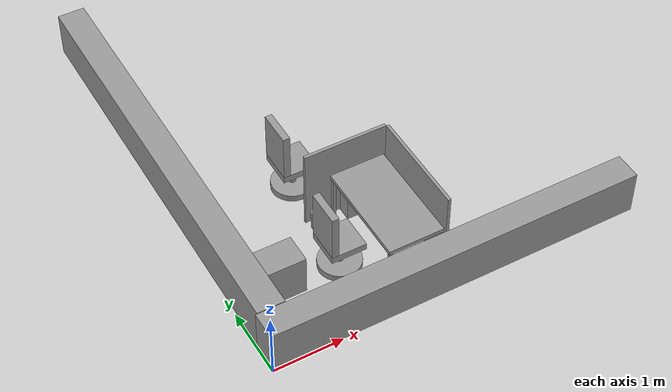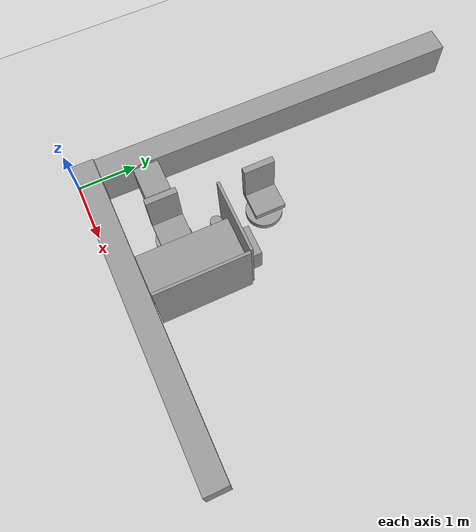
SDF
<sdf version="1.6">
 <world name="default">
  <model name="ground_plane">
   <static>1</static>
   <link name="link">
    <collision name="collision">
     <geometry><plane><normal>0 0 1</normal><size>100 100</size></plane></geometry>
     <surface><friction><ode><mu>100</mu><mu2>50</mu2></ode></friction></surface>
    </collision>
    <visual name="visual">
     <cast_shadows>0</cast_shadows>
     <geometry><plane><normal>0 0 1</normal><size>100 100</size></plane></geometry>
     <material>
      <script><uri>file://media/materials/scripts/gazebo.material</uri><name>Gazebo/Grey</name></script>
     </material>
    </visual>
   </link>
  </model>
  <model name="L8401_mounted_heater">
   <link name="link_1">
    <pose>1.23386 -1.6503 -0.000337 0 -0 0</pose>
    <inertial>
     <mass>1.40657</mass>
     <inertia>
      <ixx>0.0695898</ixx>
      <ixy>0</ixy>
      <ixz>0</ixz>
      <iyy>3.47219</iyy>
      <iyz>0</iyz>
      <izz>3.43877</izz>
     </inertia>
    </inertial>
    <visual name="visual">
     <geometry><box><size>5.40211 0.392756 0.662878</size></box></geometry>
     <material>
      <lighting>1</lighting>
      <script><uri>file://media/materials/scripts/gazebo.material</uri><name>Gazebo/Grey</name></script>
      <ambient>0.3 0.3 0.3 1</ambient>
      <diffuse>0.7 0.7 0.7 1</diffuse>
      <specular>0.01 0.01 0.01 1</specular>
      <emissive>0 0 0 1</emissive>
      <shader type="vertex"><normal_map>__default__</normal_map></shader>
     </material>
    </visual>
    <collision name="collision">
     <geometry><box><size>5.40211 0.392756 0.662878</size></box></geometry>
     <surface>
      <friction>
       <ode><mu>1</mu><mu2>1</mu2><fdir1>0 0 0</fdir1><slip1>0</slip1><slip2>0</slip2></ode>
       <torsional>
        <coefficient>1</coefficient>
        <patch_radius>0</patch_radius>
        <surface_radius>0</surface_radius>
        <use_patch_radius>1</use_patch_radius>
        <ode><slip>0</slip></ode>
       </torsional>
      </friction>
      <bounce><restitution_coefficient>0</restitution_coefficient><threshold>1e+06</threshold></bounce>
      <contact>
       <collide_without_contact>0</collide_without_contact>
       <collide_without_contact_bitmask>1</collide_without_contact_bitmask>
       <collide_bitmask>1</collide_bitmask>
       <ode>
        <soft_cfm>0</soft_cfm>
        <soft_erp>0.2</soft_erp>
        <kp>1e+13</kp>
        <kd>1</kd>
        <max_vel>0.01</max_vel>
        <min_depth>0</min_depth>
       </ode>
       <bullet>
        <split_impulse>1</split_impulse>
        <split_impulse_penetration_threshold>-0.01</split_impulse_penetration_threshold>
        <soft_cfm>0</soft_cfm>
        <soft_erp>0.2</soft_erp>
        <kp>1e+13</kp>
        <kd>1</kd>
       </bullet>
      </contact>
     </surface>
    </collision>
   </link>
   <link name="link_1_clone">
    <pose>-1.23386 1.6503 0.000337 0 0 -1.57467</pose>
    <inertial>
     <mass>1.62191</mass>
     <inertia>
      <ixx>0.0809796</ixx>
      <ixy>0</ixy>
      <ixz>0</ixz>
      <iyy>5.24067</iyy>
      <iyz>0</iyz>
      <izz>5.20139</izz>
     </inertia>
    </inertial>
    <visual name="visual">
     <geometry><box><size>6.19103 0.392756 0.666978</size></box></geometry>
     <material>
      <lighting>1</lighting>
      <script><uri>file://media/materials/scripts/gazebo.material</uri><name>Gazebo/Grey</name></script>
      <ambient>0.3 0.3 0.3 1</ambient>
      <diffuse>0.7 0.7 0.7 1</diffuse>
      <specular>0.01 0.01 0.01 1</specular>
      <emissive>0 0 0 1</emissive>
      <shader type="vertex"><normal_map>__default__</normal_map></shader>
     </material>
    </visual>
    <collision name="collision">
     <geometry><box><size>6.19103 0.392756 0.666978</size></box></geometry>
     <surface>
      <friction>
       <ode><mu>1</mu><mu2>1</mu2><fdir1>0 0 0</fdir1><slip1>0</slip1><slip2>0</slip2></ode>
       <torsional>
        <coefficient>1</coefficient>
        <patch_radius>0</patch_radius>
        <surface_radius>0</surface_radius>
        <use_patch_radius>1</use_patch_radius>
        <ode><slip>0</slip></ode>
       </torsional>
      </friction>
      <bounce><restitution_coefficient>0</restitution_coefficient><threshold>1e+06</threshold></bounce>
      <contact>
       <collide_without_contact>0</collide_without_contact>
       <collide_without_contact_bitmask>1</collide_without_contact_bitmask>
       <collide_bitmask>1</collide_bitmask>
       <ode>
        <soft_cfm>0</soft_cfm>
        <soft_erp>0.2</soft_erp>
        <kp>1e+13</kp>
        <kd>1</kd>
        <max_vel>0.01</max_vel>
        <min_depth>0</min_depth>
       </ode>
       <bullet>
        <split_impulse>1</split_impulse>
        <split_impulse_penetration_threshold>-0.01</split_impulse_penetration_threshold>
        <soft_cfm>0</soft_cfm>
        <soft_erp>0.2</soft_erp>
        <kp>1e+13</kp>
        <kd>1</kd>
       </bullet>
      </contact>
     </surface>
    </collision>
   </link>
   <static>1</static>
   <pose>1.46087 1.8518 0.337569 1e-05 -4.1e-05 -5.2e-05</pose>
  </model>
  <model name="L8401_panel_B_0">
   <link name="link_0">
    <pose>0 0 0 0 -0 1.57</pose>
    <inertial>
     <mass>1</mass>
     <inertia>
      <ixx>0.166667</ixx>
      <ixy>0</ixy>
      <ixz>0</ixz>
      <iyy>0.166667</iyy>
      <iyz>0</iyz>
      <izz>0.166667</izz>
     </inertia>
    </inertial>
    <visual name="visual">
     <geometry><box><size>1.5 0.045 1.23</size></box></geometry>
     <material>
      <lighting>1</lighting>
      <script><uri>file://media/materials/scripts/gazebo.material</uri><name>Gazebo/Grey</name></script>
      <ambient>0.3 0.3 0.3 1</ambient>
      <diffuse>0.7 0.7 0.7 1</diffuse>
      <specular>0.01 0.01 0.01 1</specular>
      <emissive>0 0 0 1</emissive>
      <shader type="vertex"><normal_map>__default__</normal_map></shader>
     </material>
    </visual>
    <collision name="collision">
     <geometry><box><size>1.5 0.045 1.23</size></box></geometry>
     <surface>
      <friction>
       <ode><mu>1</mu><mu2>1</mu2><fdir1>0 0 0</fdir1><slip1>0</slip1><slip2>0</slip2></ode>
       <torsional>
        <coefficient>1</coefficient>
        <patch_radius>0</patch_radius>
        <surface_radius>0</surface_radius>
        <use_patch_radius>1</use_patch_radius>
        <ode><slip>0</slip></ode>
       </torsional>
      </friction>
      <bounce><restitution_coefficient>0</restitution_coefficient><threshold>1e+06</threshold></bounce>
      <contact>
       <collide_without_contact>0</collide_without_contact>
       <collide_without_contact_bitmask>1</collide_without_contact_bitmask>
       <collide_bitmask>1</collide_bitmask>
       <ode>
        <soft_cfm>0</soft_cfm>
        <soft_erp>0.2</soft_erp>
        <kp>1e+13</kp>
        <kd>1</kd>
        <max_vel>0.01</max_vel>
        <min_depth>0</min_depth>
       </ode>
       <bullet>
        <split_impulse>1</split_impulse>
        <split_impulse_penetration_threshold>-0.01</split_impulse_penetration_threshold>
        <soft_cfm>0</soft_cfm>
        <soft_erp>0.2</soft_erp>
        <kp>1e+13</kp>
        <kd>1</kd>
       </bullet>
      </contact>
     </surface>
    </collision>
   </link>
   <static>1</static>
   <pose>2.73777 1.16621 0.615 0 -0 0.00224</pose>
  </model>
  <model name="L8401_desk_clone_0">
   <link name="link_0">
    <pose>0.358907 -0.716347 -0.07 0 -0 3.14159</pose>
    <inertial>
     <mass>0.00540124</mass>
     <inertia>
      <ixx>0.00024509</ixx>
      <ixy>0</ixy>
      <ixz>0</ixz>
      <iyy>0.00024438</iyy>
      <iyz>0</iyz>
      <izz>6.68e-06</izz>
     </inertia>
    </inertial>
    <visual name="visual">
     <geometry><box><size>0.05 0.05 0.7</size></box></geometry>
     <material>
      <lighting>1</lighting>
      <script><uri>file://media/materials/scripts/gazebo.material</uri><name>Gazebo/Grey</name></script>
      <ambient>0.3 0.3 0.3 1</ambient>
      <diffuse>0.7 0.7 0.7 1</diffuse>
      <specular>0.01 0.01 0.01 1</specular>
      <emissive>0 0 0 1</emissive>
      <shader type="vertex"><normal_map>__default__</normal_map></shader>
     </material>
    </visual>
    <collision name="collision">
     <geometry><box><size>0.05 0.05 0.7</size></box></geometry>
     <surface>
      <friction>
       <ode><mu>1</mu><mu2>1</mu2><fdir1>0 0 0</fdir1><slip1>0</slip1><slip2>0</slip2></ode>
       <torsional>
        <coefficient>1</coefficient>
        <patch_radius>0</patch_radius>
        <surface_radius>0</surface_radius>
        <use_patch_radius>1</use_patch_radius>
        <ode><slip>0</slip></ode>
       </torsional>
      </friction>
      <bounce><restitution_coefficient>0</restitution_coefficient><threshold>1e+06</threshold></bounce>
      <contact>
       <collide_without_contact>0</collide_without_contact>
       <collide_without_contact_bitmask>1</collide_without_contact_bitmask>
       <collide_bitmask>1</collide_bitmask>
       <ode>
        <soft_cfm>0</soft_cfm>
        <soft_erp>0.2</soft_erp>
        <kp>1e+13</kp>
        <kd>1</kd>
        <max_vel>0.01</max_vel>
        <min_depth>0</min_depth>
       </ode>
       <bullet>
        <split_impulse>1</split_impulse>
        <split_impulse_penetration_threshold>-0.01</split_impulse_penetration_threshold>
        <soft_cfm>0</soft_cfm>
        <soft_erp>0.2</soft_erp>
        <kp>1e+13</kp>
        <kd>1</kd>
       </bullet>
      </contact>
     </surface>
    </collision>
   </link>
   <link name="link_0_clone">
    <pose>-0.368381 -0.716242 -0.07 0 -0 3.14159</pose>
    <inertial>
     <mass>0.00540124</mass>
     <inertia>
      <ixx>0.00024509</ixx>
      <ixy>0</ixy>
      <ixz>0</ixz>
      <iyy>0.00024438</iyy>
      <iyz>0</iyz>
      <izz>6.68e-06</izz>
     </inertia>
    </inertial>
    <visual name="visual">
     <geometry><box><size>0.05 0.05 0.7</size></box></geometry>
     <material>
      <lighting>1</lighting>
      <script><uri>file://media/materials/scripts/gazebo.material</uri><name>Gazebo/Grey</name></script>
      <ambient>0.3 0.3 0.3 1</ambient>
      <diffuse>0.7 0.7 0.7 1</diffuse>
      <specular>0.01 0.01 0.01 1</specular>
      <emissive>0 0 0 1</emissive>
      <shader type="vertex"><normal_map>__default__</normal_map></shader>
     </material>
    </visual>
    <collision name="collision">
     <geometry><box><size>0.05 0.05 0.7</size></box></geometry>
     <surface>
      <friction>
       <ode><mu>1</mu><mu2>1</mu2><fdir1>0 0 0</fdir1><slip1>0</slip1><slip2>0</slip2></ode>
       <torsional>
        <coefficient>1</coefficient>
        <patch_radius>0</patch_radius>
        <surface_radius>0</surface_radius>
        <use_patch_radius>1</use_patch_radius>
        <ode><slip>0</slip></ode>
       </torsional>
      </friction>
      <bounce><restitution_coefficient>0</restitution_coefficient><threshold>1e+06</threshold></bounce>
      <contact>
       <collide_without_contact>0</collide_without_contact>
       <collide_without_contact_bitmask>1</collide_without_contact_bitmask>
       <collide_bitmask>1</collide_bitmask>
       <ode>
        <soft_cfm>0</soft_cfm>
        <soft_erp>0.2</soft_erp>
        <kp>1e+13</kp>
        <kd>1</kd>
        <max_vel>0.01</max_vel>
        <min_depth>0</min_depth>
       </ode>
       <bullet>
        <split_impulse>1</split_impulse>
        <split_impulse_penetration_threshold>-0.01</split_impulse_penetration_threshold>
        <soft_cfm>0</soft_cfm>
        <soft_erp>0.2</soft_erp>
        <kp>1e+13</kp>
        <kd>1</kd>
       </bullet>
      </contact>
     </surface>
    </collision>
   </link>
   <link name="link_0_clone_0">
    <pose>-0.368174 0.719141 -0.07 0 -0 3.14159</pose>
    <inertial>
     <mass>0.00540124</mass>
     <inertia>
      <ixx>0.00024509</ixx>
      <ixy>0</ixy>
      <ixz>0</ixz>
      <iyy>0.00024438</iyy>
      <iyz>0</iyz>
      <izz>6.68e-06</izz>
     </inertia>
    </inertial>
    <visual name="visual">
     <geometry><box><size>0.05 0.05 0.7</size></box></geometry>
     <material>
      <lighting>1</lighting>
      <script><uri>file://media/materials/scripts/gazebo.material</uri><name>Gazebo/Grey</name></script>
      <ambient>0.3 0.3 0.3 1</ambient>
      <diffuse>0.7 0.7 0.7 1</diffuse>
      <specular>0.01 0.01 0.01 1</specular>
      <emissive>0 0 0 1</emissive>
      <shader type="vertex"><normal_map>__default__</normal_map></shader>
     </material>
    </visual>
    <collision name="collision">
     <geometry><box><size>0.05 0.05 0.7</size></box></geometry>
     <surface>
      <friction>
       <ode><mu>1</mu><mu2>1</mu2><fdir1>0 0 0</fdir1><slip1>0</slip1><slip2>0</slip2></ode>
       <torsional>
        <coefficient>1</coefficient>
        <patch_radius>0</patch_radius>
        <surface_radius>0</surface_radius>
        <use_patch_radius>1</use_patch_radius>
        <ode><slip>0</slip></ode>
       </torsional>
      </friction>
      <bounce><restitution_coefficient>0</restitution_coefficient><threshold>1e+06</threshold></bounce>
      <contact>
       <collide_without_contact>0</collide_without_contact>
       <collide_without_contact_bitmask>1</collide_without_contact_bitmask>
       <collide_bitmask>1</collide_bitmask>
       <ode>
        <soft_cfm>0</soft_cfm>
        <soft_erp>0.2</soft_erp>
        <kp>1e+13</kp>
        <kd>1</kd>
        <max_vel>0.01</max_vel>
        <min_depth>0</min_depth>
       </ode>
       <bullet>
        <split_impulse>1</split_impulse>
        <split_impulse_penetration_threshold>-0.01</split_impulse_penetration_threshold>
        <soft_cfm>0</soft_cfm>
        <soft_erp>0.2</soft_erp>
        <kp>1e+13</kp>
        <kd>1</kd>
       </bullet>
      </contact>
     </surface>
    </collision>
   </link>
   <link name="link_0_clone_1">
    <pose>0.359113 0.719037 -0.07 0 -0 3.14159</pose>
    <inertial>
     <mass>0.00540124</mass>
     <inertia>
      <ixx>0.00024509</ixx>
      <ixy>0</ixy>
      <ixz>0</ixz>
      <iyy>0.00024438</iyy>
      <iyz>0</iyz>
      <izz>6.68e-06</izz>
     </inertia>
    </inertial>
    <visual name="visual">
     <geometry><box><size>0.05 0.05 0.7</size></box></geometry>
     <material>
      <lighting>1</lighting>
      <script><uri>file://media/materials/scripts/gazebo.material</uri><name>Gazebo/Grey</name></script>
      <ambient>0.3 0.3 0.3 1</ambient>
      <diffuse>0.7 0.7 0.7 1</diffuse>
      <specular>0.01 0.01 0.01 1</specular>
      <emissive>0 0 0 1</emissive>
      <shader type="vertex"><normal_map>__default__</normal_map></shader>
     </material>
    </visual>
    <collision name="collision">
     <geometry><box><size>0.05 0.05 0.7</size></box></geometry>
     <surface>
      <friction>
       <ode><mu>1</mu><mu2>1</mu2><fdir1>0 0 0</fdir1><slip1>0</slip1><slip2>0</slip2></ode>
       <torsional>
        <coefficient>1</coefficient>
        <patch_radius>0</patch_radius>
        <surface_radius>0</surface_radius>
        <use_patch_radius>1</use_patch_radius>
        <ode><slip>0</slip></ode>
       </torsional>
      </friction>
      <bounce><restitution_coefficient>0</restitution_coefficient><threshold>1e+06</threshold></bounce>
      <contact>
       <collide_without_contact>0</collide_without_contact>
       <collide_without_contact_bitmask>1</collide_without_contact_bitmask>
       <collide_bitmask>1</collide_bitmask>
       <ode>
        <soft_cfm>0</soft_cfm>
        <soft_erp>0.2</soft_erp>
        <kp>1e+13</kp>
        <kd>1</kd>
        <max_vel>0.01</max_vel>
        <min_depth>0</min_depth>
       </ode>
       <bullet>
        <split_impulse>1</split_impulse>
        <split_impulse_penetration_threshold>-0.01</split_impulse_penetration_threshold>
        <soft_cfm>0</soft_cfm>
        <soft_erp>0.2</soft_erp>
        <kp>1e+13</kp>
        <kd>1</kd>
       </bullet>
      </contact>
     </surface>
    </collision>
   </link>
   <link name="link_1">
    <pose>-6e-05 0.001672 0.28 0 -0 0</pose>
    <inertial>
     <mass>0.0467165</mass>
     <inertia>
      <ixx>0.00864379</ixx>
      <ixy>0</ixy>
      <ixz>0</ixz>
      <iyy>0.00285842</iyy>
      <iyz>0</iyz>
      <izz>0.0114918</izz>
     </inertia>
    </inertial>
    <visual name="visual">
     <geometry><box><size>0.8 1.5 0.06</size></box></geometry>
     <material>
      <lighting>1</lighting>
      <script><uri>file://media/materials/scripts/gazebo.material</uri><name>Gazebo/Grey</name></script>
      <ambient>0.3 0.3 0.3 1</ambient>
      <diffuse>0.7 0.7 0.7 1</diffuse>
      <specular>0.01 0.01 0.01 1</specular>
      <emissive>0 0 0 1</emissive>
      <shader type="vertex"><normal_map>__default__</normal_map></shader>
     </material>
    </visual>
    <collision name="collision">
     <geometry><box><size>0.8 1.5 0.06</size></box></geometry>
     <surface>
      <friction>
       <ode><mu>1</mu><mu2>1</mu2><fdir1>0 0 0</fdir1><slip1>0</slip1><slip2>0</slip2></ode>
       <torsional>
        <coefficient>1</coefficient>
        <patch_radius>0</patch_radius>
        <surface_radius>0</surface_radius>
        <use_patch_radius>1</use_patch_radius>
        <ode><slip>0</slip></ode>
       </torsional>
      </friction>
      <bounce><restitution_coefficient>0</restitution_coefficient><threshold>1e+06</threshold></bounce>
      <contact>
       <collide_without_contact>0</collide_without_contact>
       <collide_without_contact_bitmask>1</collide_without_contact_bitmask>
       <collide_bitmask>1</collide_bitmask>
       <ode>
        <soft_cfm>0</soft_cfm>
        <soft_erp>0.2</soft_erp>
        <kp>1e+13</kp>
        <kd>1</kd>
        <max_vel>0.01</max_vel>
        <min_depth>0</min_depth>
       </ode>
       <bullet>
        <split_impulse>1</split_impulse>
        <split_impulse_penetration_threshold>-0.01</split_impulse_penetration_threshold>
        <soft_cfm>0</soft_cfm>
        <soft_erp>0.2</soft_erp>
        <kp>1e+13</kp>
        <kd>1</kd>
       </bullet>
      </contact>
     </surface>
    </collision>
   </link>
   <joint name="link_1_JOINT_0" type="fixed">
    <parent>link_1</parent>
    <child>link_0</child>
    <pose>0 0 0 -0.01 -0.02 -0.01</pose>
    <physics>
     <ode><limit><cfm>0</cfm><erp>0.2</erp></limit><suspension><cfm>0</cfm><erp>0.2</erp></suspension></ode>
    </physics>
   </joint>
   <joint name="link_1_JOINT_1" type="fixed">
    <parent>link_1</parent>
    <child>link_0_clone</child>
    <physics>
     <ode><limit><cfm>0</cfm><erp>0.2</erp></limit><suspension><cfm>0</cfm><erp>0.2</erp></suspension></ode>
    </physics>
   </joint>
   <joint name="link_1_JOINT_2" type="fixed">
    <parent>link_1</parent>
    <child>link_0_clone_1</child>
    <physics>
     <ode><limit><cfm>0</cfm><erp>0.2</erp></limit><suspension><cfm>0</cfm><erp>0.2</erp></suspension></ode>
    </physics>
   </joint>
   <joint name="link_1_JOINT_3" type="fixed">
    <parent>link_1</parent>
    <child>link_0_clone_0</child>
    <physics>
     <ode><limit><cfm>0</cfm><erp>0.2</erp></limit><suspension><cfm>0</cfm><erp>0.2</erp></suspension></ode>
    </physics>
   </joint>
   <static>1</static>
   <pose>2.28207 1.15713 0.420003 3e-06 2e-06 0.000315</pose>
  </model>
  <model name="L8401_panel_A_0_clone">
   <link name="link_0">
    <inertial>
     <mass>1</mass>
     <inertia>
      <ixx>0.166667</ixx>
      <ixy>0</ixy>
      <ixz>0</ixz>
      <iyy>0.166667</iyy>
      <iyz>0</iyz>
      <izz>0.166667</izz>
     </inertia>
    </inertial>
    <visual name="visual">
     <geometry><box><size>1.2 0.045 1.23</size></box></geometry>
     <material>
      <lighting>1</lighting>
      <script><uri>file://media/materials/scripts/gazebo.material</uri><name>Gazebo/Grey</name></script>
      <ambient>0.3 0.3 0.3 1</ambient>
      <diffuse>0.7 0.7 0.7 1</diffuse>
      <specular>0.01 0.01 0.01 1</specular>
      <emissive>0 0 0 1</emissive>
      <shader type="vertex"><normal_map>__default__</normal_map></shader>
     </material>
    </visual>
    <collision name="collision">
     <geometry><box><size>1.2 0.045 1.23</size></box></geometry>
     <surface>
      <friction>
       <ode><mu>1</mu><mu2>1</mu2><fdir1>0 0 0</fdir1><slip1>0</slip1><slip2>0</slip2></ode>
       <torsional>
        <coefficient>1</coefficient>
        <patch_radius>0</patch_radius>
        <surface_radius>0</surface_radius>
        <use_patch_radius>1</use_patch_radius>
        <ode><slip>0</slip></ode>
       </torsional>
      </friction>
      <bounce><restitution_coefficient>0</restitution_coefficient><threshold>1e+06</threshold></bounce>
      <contact>
       <collide_without_contact>0</collide_without_contact>
       <collide_without_contact_bitmask>1</collide_without_contact_bitmask>
       <collide_bitmask>1</collide_bitmask>
       <ode>
        <soft_cfm>0</soft_cfm>
        <soft_erp>0.2</soft_erp>
        <kp>1e+13</kp>
        <kd>1</kd>
        <max_vel>0.01</max_vel>
        <min_depth>0</min_depth>
       </ode>
       <bullet>
        <split_impulse>1</split_impulse>
        <split_impulse_penetration_threshold>-0.01</split_impulse_penetration_threshold>
        <soft_cfm>0</soft_cfm>
        <soft_erp>0.2</soft_erp>
        <kp>1e+13</kp>
        <kd>1</kd>
       </bullet>
      </contact>
     </surface>
    </collision>
   </link>
   <static>1</static>
   <pose>2.11523 1.94144 0.615002 5e-06 -3e-06 2e-06</pose>
  </model>
  <model name="L8401_computer_clone_0">
   <link name="link">
    <inertial>
     <mass>1</mass>
     <inertia>
      <ixx>0.166667</ixx>
      <ixy>0</ixy>
      <ixz>0</ixz>
      <iyy>0.166667</iyy>
      <iyz>0</iyz>
      <izz>0.166667</izz>
     </inertia>
    </inertial>
    <visual name="visual">
     <geometry><box><size>0.5 0.2 0.5</size></box></geometry>
     <material>
      <script><name>Gazebo/Grey</name><uri>file://media/materials/scripts/gazebo.material</uri></script>
      <ambient>0.3 0.3 0.3 1</ambient>
      <diffuse>0.7 0.7 0.7 1</diffuse>
      <specular>0.01 0.01 0.01 1</specular>
      <emissive>0 0 0 1</emissive>
      <shader type="vertex"><normal_map>__default__</normal_map></shader>
     </material>
    </visual>
    <collision name="collision">
     <geometry><box><size>0.5 0.2 0.5</size></box></geometry>
     <surface>
      <friction>
       <ode><mu>1</mu><mu2>1</mu2><fdir1>0 0 0</fdir1><slip1>0</slip1><slip2>0</slip2></ode>
       <torsional>
        <coefficient>1</coefficient>
        <patch_radius>0</patch_radius>
        <surface_radius>0</surface_radius>
        <use_patch_radius>1</use_patch_radius>
        <ode><slip>0</slip></ode>
       </torsional>
      </friction>
      <bounce><restitution_coefficient>0</restitution_coefficient><threshold>1e+06</threshold></bounce>
      <contact>
       <collide_without_contact>0</collide_without_contact>
       <collide_without_contact_bitmask>1</collide_without_contact_bitmask>
       <collide_bitmask>1</collide_bitmask>
       <ode>
        <soft_cfm>0</soft_cfm>
        <soft_erp>0.2</soft_erp>
        <kp>1e+13</kp>
        <kd>1</kd>
        <max_vel>0.01</max_vel>
        <min_depth>0</min_depth>
       </ode>
       <bullet>
        <split_impulse>1</split_impulse>
        <split_impulse_penetration_threshold>-0.01</split_impulse_penetration_threshold>
        <soft_cfm>0</soft_cfm>
        <soft_erp>0.2</soft_erp>
        <kp>1e+13</kp>
        <kd>1</kd>
       </bullet>
      </contact>
     </surface>
    </collision>
   </link>
   <static>1</static>
   <pose>2.28162 1.80792 0.250001 -0 2e-06 -0.000163</pose>
  </model>
  <model name="L8401_computer_clone_1">
   <link name="link">
    <inertial>
     <mass>1</mass>
     <inertia>
      <ixx>0.166667</ixx>
      <ixy>0</ixy>
      <ixz>0</ixz>
      <iyy>0.166667</iyy>
      <iyz>0</iyz>
      <izz>0.166667</izz>
     </inertia>
    </inertial>
    <visual name="visual">
     <geometry><box><size>0.5 0.2 0.5</size></box></geometry>
     <material>
      <script><name>Gazebo/Grey</name><uri>file://media/materials/scripts/gazebo.material</uri></script>
      <ambient>0.3 0.3 0.3 1</ambient>
      <diffuse>0.7 0.7 0.7 1</diffuse>
      <specular>0.01 0.01 0.01 1</specular>
      <emissive>0 0 0 1</emissive>
      <shader type="vertex"><normal_map>__default__</normal_map></shader>
     </material>
    </visual>
    <collision name="collision">
     <geometry><box><size>0.5 0.2 0.5</size></box></geometry>
     <surface>
      <friction>
       <ode><mu>1</mu><mu2>1</mu2><fdir1>0 0 0</fdir1><slip1>0</slip1><slip2>0</slip2></ode>
       <torsional>
        <coefficient>1</coefficient>
        <patch_radius>0</patch_radius>
        <surface_radius>0</surface_radius>
        <use_patch_radius>1</use_patch_radius>
        <ode><slip>0</slip></ode>
       </torsional>
      </friction>
      <bounce><restitution_coefficient>0</restitution_coefficient><threshold>1e+06</threshold></bounce>
      <contact>
       <collide_without_contact>0</collide_without_contact>
       <collide_without_contact_bitmask>1</collide_without_contact_bitmask>
       <collide_bitmask>1</collide_bitmask>
       <ode>
        <soft_cfm>0</soft_cfm>
        <soft_erp>0.2</soft_erp>
        <kp>1e+13</kp>
        <kd>1</kd>
        <max_vel>0.01</max_vel>
        <min_depth>0</min_depth>
       </ode>
       <bullet>
        <split_impulse>1</split_impulse>
        <split_impulse_penetration_threshold>-0.01</split_impulse_penetration_threshold>
        <soft_cfm>0</soft_cfm>
        <soft_erp>0.2</soft_erp>
        <kp>1e+13</kp>
        <kd>1</kd>
       </bullet>
      </contact>
     </surface>
    </collision>
   </link>
   <static>1</static>
   <pose>2.28161 2.08176 0.250001 1e-06 -2e-06 -0.000225</pose>
  </model>
  <model name="L8401_drawer_A">
   <link name="link">
    <inertial>
     <mass>1</mass>
     <inertia>
      <ixx>0.166667</ixx>
      <ixy>0</ixy>
      <ixz>0</ixz>
      <iyy>0.166667</iyy>
      <iyz>0</iyz>
      <izz>0.166667</izz>
     </inertia>
    </inertial>
    <visual name="visual">
     <geometry><box><size>0.56 0.42 0.61</size></box></geometry>
     <material>
      <script><name>Gazebo/Grey</name><uri>file://media/materials/scripts/gazebo.material</uri></script>
      <ambient>0.3 0.3 0.3 1</ambient>
      <diffuse>0.7 0.7 0.7 1</diffuse>
      <specular>0.01 0.01 0.01 1</specular>
      <emissive>0 0 0 1</emissive>
      <shader type="vertex"><normal_map>__default__</normal_map></shader>
     </material>
    </visual>
    <collision name="collision">
     <geometry><box><size>0.56 0.42 0.61</size></box></geometry>
     <surface>
      <friction>
       <ode><mu>1</mu><mu2>1</mu2><fdir1>0 0 0</fdir1><slip1>0</slip1><slip2>0</slip2></ode>
       <torsional>
        <coefficient>1</coefficient>
        <patch_radius>0</patch_radius>
        <surface_radius>0</surface_radius>
        <use_patch_radius>1</use_patch_radius>
        <ode><slip>0</slip></ode>
       </torsional>
      </friction>
      <bounce><restitution_coefficient>0</restitution_coefficient><threshold>1e+06</threshold></bounce>
      <contact>
       <collide_without_contact>0</collide_without_contact>
       <collide_without_contact_bitmask>1</collide_without_contact_bitmask>
       <collide_bitmask>1</collide_bitmask>
       <ode>
        <soft_cfm>0</soft_cfm>
        <soft_erp>0.2</soft_erp>
        <kp>1e+13</kp>
        <kd>1</kd>
        <max_vel>0.01</max_vel>
        <min_depth>0</min_depth>
       </ode>
       <bullet>
        <split_impulse>1</split_impulse>
        <split_impulse_penetration_threshold>-0.01</split_impulse_penetration_threshold>
        <soft_cfm>0</soft_cfm>
        <soft_erp>0.2</soft_erp>
        <kp>1e+13</kp>
        <kd>1</kd>
       </bullet>
      </contact>
     </surface>
    </collision>
   </link>
   <static>1</static>
   <pose>0.69612 1.11916 0.305 0 -0 0</pose>
  </model>
  <model name="L8401_trash_bin_clone">
   <link name="link">
    <inertial>
     <mass>1</mass>
     <inertia><ixx>0.145833</ixx><ixy>0</ixy><ixz>0</ixz><iyy>0.145833</iyy><iyz>0</iyz><izz>0.125</izz></inertia>
    </inertial>
    <visual name="visual">
     <geometry><cylinder><radius>0.1</radius><length>0.26</length></cylinder></geometry>
     <material>
      <script><name>Gazebo/Grey</name><uri>file://media/materials/scripts/gazebo.material</uri></script>
      <ambient>0.3 0.3 0.3 1</ambient>
      <diffuse>0.7 0.7 0.7 1</diffuse>
      <specular>0.01 0.01 0.01 1</specular>
      <emissive>0 0 0 1</emissive>
      <shader type="vertex"><normal_map>__default__</normal_map></shader>
     </material>
    </visual>
    <collision name="collision">
     <geometry><cylinder><radius>0.1</radius><length>0.26</length></cylinder></geometry>
     <surface>
      <friction>
       <ode><mu>1</mu><mu2>1</mu2><fdir1>0 0 0</fdir1><slip1>0</slip1><slip2>0</slip2></ode>
       <torsional>
        <coefficient>1</coefficient>
        <patch_radius>0</patch_radius>
        <surface_radius>0</surface_radius>
        <use_patch_radius>1</use_patch_radius>
        <ode><slip>0</slip></ode>
       </torsional>
      </friction>
      <bounce><restitution_coefficient>0</restitution_coefficient><threshold>1e+06</threshold></bounce>
      <contact>
       <collide_without_contact>0</collide_without_contact>
       <collide_without_contact_bitmask>1</collide_without_contact_bitmask>
       <collide_bitmask>1</collide_bitmask>
       <ode>
        <soft_cfm>0</soft_cfm>
        <soft_erp>0.2</soft_erp>
        <kp>1e+13</kp>
        <kd>1</kd>
        <max_vel>0.01</max_vel>
        <min_depth>0</min_depth>
       </ode>
       <bullet>
        <split_impulse>1</split_impulse>
        <split_impulse_penetration_threshold>-0.01</split_impulse_penetration_threshold>
        <soft_cfm>0</soft_cfm>
        <soft_erp>0.2</soft_erp>
        <kp>1e+13</kp>
        <kd>1</kd>
       </bullet>
      </contact>
     </surface>
    </collision>
   </link>
   <static>1</static>
   <pose>1.63915 1.79565 0.129999 0 -0 0</pose>
  </model>
  <model name="L8401_chair">
   <link name="link">
    <pose>0 -0 0.25 0 -0 0</pose>
    <inertial>
     <mass>1</mass>
     <inertia><ixx>0.145833</ixx><ixy>0</ixy><ixz>0</ixz><iyy>0.145833</iyy><iyz>0</iyz><izz>0.125</izz></inertia>
    </inertial>
    <visual name="visual">
     <geometry><cylinder><radius>0.05</radius><length>0.3</length></cylinder></geometry>
     <material>
      <script><name>Gazebo/Grey</name><uri>file://media/materials/scripts/gazebo.material</uri></script>
      <ambient>0.3 0.3 0.3 1</ambient>
      <diffuse>0.7 0.7 0.7 1</diffuse>
      <specular>0.01 0.01 0.01 1</specular>
      <emissive>0 0 0 1</emissive>
      <shader type="vertex"><normal_map>__default__</normal_map></shader>
     </material>
    </visual>
    <collision name="collision">
     <geometry><cylinder><radius>0.05</radius><length>0.3</length></cylinder></geometry>
     <surface>
      <friction>
       <ode><mu>1</mu><mu2>1</mu2><fdir1>0 0 0</fdir1><slip1>0</slip1><slip2>0</slip2></ode>
       <torsional>
        <coefficient>1</coefficient>
        <patch_radius>0</patch_radius>
        <surface_radius>0</surface_radius>
        <use_patch_radius>1</use_patch_radius>
        <ode><slip>0</slip></ode>
       </torsional>
      </friction>
      <bounce><restitution_coefficient>0</restitution_coefficient><threshold>1e+06</threshold></bounce>
      <contact>
       <collide_without_contact>0</collide_without_contact>
       <collide_without_contact_bitmask>1</collide_without_contact_bitmask>
       <collide_bitmask>1</collide_bitmask>
       <ode>
        <soft_cfm>0</soft_cfm>
        <soft_erp>0.2</soft_erp>
        <kp>1e+13</kp>
        <kd>1</kd>
        <max_vel>0.01</max_vel>
        <min_depth>0</min_depth>
       </ode>
       <bullet>
        <split_impulse>1</split_impulse>
        <split_impulse_penetration_threshold>-0.01</split_impulse_penetration_threshold>
        <soft_cfm>0</soft_cfm>
        <soft_erp>0.2</soft_erp>
        <kp>1e+13</kp>
        <kd>1</kd>
       </bullet>
      </contact>
     </surface>
    </collision>
   </link>
   <link name="link_0">
    <pose>0 -0 0.45 0 -0 0</pose>
    <inertial>
     <mass>1</mass>
     <inertia>
      <ixx>0.166667</ixx>
      <ixy>0</ixy>
      <ixz>0</ixz>
      <iyy>0.166667</iyy>
      <iyz>0</iyz>
      <izz>0.166667</izz>
     </inertia>
    </inertial>
    <visual name="visual">
     <geometry><box><size>0.5 0.5 0.1</size></box></geometry>
     <material>
      <lighting>1</lighting>
      <script><uri>file://media/materials/scripts/gazebo.material</uri><name>Gazebo/Grey</name></script>
      <ambient>0.3 0.3 0.3 1</ambient>
      <diffuse>0.7 0.7 0.7 1</diffuse>
      <specular>0.01 0.01 0.01 1</specular>
      <emissive>0 0 0 1</emissive>
      <shader type="vertex"><normal_map>__default__</normal_map></shader>
     </material>
    </visual>
    <collision name="collision">
     <geometry><box><size>0.5 0.5 0.1</size></box></geometry>
     <surface>
      <friction>
       <ode><mu>1</mu><mu2>1</mu2><fdir1>0 0 0</fdir1><slip1>0</slip1><slip2>0</slip2></ode>
       <torsional>
        <coefficient>1</coefficient>
        <patch_radius>0</patch_radius>
        <surface_radius>0</surface_radius>
        <use_patch_radius>1</use_patch_radius>
        <ode><slip>0</slip></ode>
       </torsional>
      </friction>
      <bounce><restitution_coefficient>0</restitution_coefficient><threshold>1e+06</threshold></bounce>
      <contact>
       <collide_without_contact>0</collide_without_contact>
       <collide_without_contact_bitmask>1</collide_without_contact_bitmask>
       <collide_bitmask>1</collide_bitmask>
       <ode>
        <soft_cfm>0</soft_cfm>
        <soft_erp>0.2</soft_erp>
        <kp>1e+13</kp>
        <kd>1</kd>
        <max_vel>0.01</max_vel>
        <min_depth>0</min_depth>
       </ode>
       <bullet>
        <split_impulse>1</split_impulse>
        <split_impulse_penetration_threshold>-0.01</split_impulse_penetration_threshold>
        <soft_cfm>0</soft_cfm>
        <soft_erp>0.2</soft_erp>
        <kp>1e+13</kp>
        <kd>1</kd>
       </bullet>
      </contact>
     </surface>
    </collision>
   </link>
   <link name="link_1">
    <pose>0 -0 0.05 0 -0 0</pose>
    <inertial>
     <mass>1</mass>
     <inertia><ixx>0.145833</ixx><ixy>0</ixy><ixz>0</ixz><iyy>0.145833</iyy><iyz>0</iyz><izz>0.125</izz></inertia>
    </inertial>
    <visual name="visual">
     <geometry><cylinder><radius>0.3</radius><length>0.1</length></cylinder></geometry>
     <material>
      <lighting>1</lighting>
      <script><uri>file://media/materials/scripts/gazebo.material</uri><name>Gazebo/Grey</name></script>
      <ambient>0.3 0.3 0.3 1</ambient>
      <diffuse>0.7 0.7 0.7 1</diffuse>
      <specular>0.01 0.01 0.01 1</specular>
      <emissive>0 0 0 1</emissive>
      <shader type="vertex"><normal_map>__default__</normal_map></shader>
     </material>
    </visual>
    <collision name="collision">
     <geometry><cylinder><radius>0.3</radius><length>0.1</length></cylinder></geometry>
     <surface>
      <friction>
       <ode><mu>1</mu><mu2>1</mu2><fdir1>0 0 0</fdir1><slip1>0</slip1><slip2>0</slip2></ode>
       <torsional>
        <coefficient>1</coefficient>
        <patch_radius>0</patch_radius>
        <surface_radius>0</surface_radius>
        <use_patch_radius>1</use_patch_radius>
        <ode><slip>0</slip></ode>
       </torsional>
      </friction>
      <bounce><restitution_coefficient>0</restitution_coefficient><threshold>1e+06</threshold></bounce>
      <contact>
       <collide_without_contact>0</collide_without_contact>
       <collide_without_contact_bitmask>1</collide_without_contact_bitmask>
       <collide_bitmask>1</collide_bitmask>
       <ode>
        <soft_cfm>0</soft_cfm>
        <soft_erp>0.2</soft_erp>
        <kp>1e+13</kp>
        <kd>1</kd>
        <max_vel>0.01</max_vel>
        <min_depth>0</min_depth>
       </ode>
       <bullet>
        <split_impulse>1</split_impulse>
        <split_impulse_penetration_threshold>-0.01</split_impulse_penetration_threshold>
        <soft_cfm>0</soft_cfm>
        <soft_erp>0.2</soft_erp>
        <kp>1e+13</kp>
        <kd>1</kd>
       </bullet>
      </contact>
     </surface>
    </collision>
   </link>
   <link name="link_2">
    <pose>-0.2 0 0.85 0 -0 0</pose>
    <inertial>
     <mass>1</mass>
     <inertia>
      <ixx>0.166667</ixx>
      <ixy>0</ixy>
      <ixz>0</ixz>
      <iyy>0.166667</iyy>
      <iyz>0</iyz>
      <izz>0.166667</izz>
     </inertia>
    </inertial>
    <visual name="visual">
     <geometry><box><size>0.1 0.5 0.7</size></box></geometry>
     <material>
      <lighting>1</lighting>
      <script><uri>file://media/materials/scripts/gazebo.material</uri><name>Gazebo/Grey</name></script>
      <ambient>0.3 0.3 0.3 1</ambient>
      <diffuse>0.7 0.7 0.7 1</diffuse>
      <specular>0.01 0.01 0.01 1</specular>
      <emissive>0 0 0 1</emissive>
      <shader type="vertex"><normal_map>__default__</normal_map></shader>
     </material>
    </visual>
    <collision name="collision">
     <geometry><box><size>0.1 0.5 0.7</size></box></geometry>
     <surface>
      <friction>
       <ode><mu>1</mu><mu2>1</mu2><fdir1>0 0 0</fdir1><slip1>0</slip1><slip2>0</slip2></ode>
       <torsional>
        <coefficient>1</coefficient>
        <patch_radius>0</patch_radius>
        <surface_radius>0</surface_radius>
        <use_patch_radius>1</use_patch_radius>
        <ode><slip>0</slip></ode>
       </torsional>
      </friction>
      <bounce><restitution_coefficient>0</restitution_coefficient><threshold>1e+06</threshold></bounce>
      <contact>
       <collide_without_contact>0</collide_without_contact>
       <collide_without_contact_bitmask>1</collide_without_contact_bitmask>
       <collide_bitmask>1</collide_bitmask>
       <ode>
        <soft_cfm>0</soft_cfm>
        <soft_erp>0.2</soft_erp>
        <kp>1e+13</kp>
        <kd>1</kd>
        <max_vel>0.01</max_vel>
        <min_depth>0</min_depth>
       </ode>
       <bullet>
        <split_impulse>1</split_impulse>
        <split_impulse_penetration_threshold>-0.01</split_impulse_penetration_threshold>
        <soft_cfm>0</soft_cfm>
        <soft_erp>0.2</soft_erp>
        <kp>1e+13</kp>
        <kd>1</kd>
       </bullet>
      </contact>
     </surface>
    </collision>
   </link>
   <joint name="link_0_JOINT_2" type="fixed">
    <parent>link_0</parent>
    <child>link_2</child>
    <physics>
     <ode><limit><cfm>0</cfm><erp>0.2</erp></limit><suspension><cfm>0</cfm><erp>0.2</erp></suspension></ode>
    </physics>
   </joint>
   <joint name="link_1_JOINT_0" type="fixed">
    <parent>link_1</parent>
    <child>link</child>
    <physics>
     <ode><limit><cfm>0</cfm><erp>0.2</erp></limit><suspension><cfm>0</cfm><erp>0.2</erp></suspension></ode>
    </physics>
   </joint>
   <joint name="link_JOINT_1" type="fixed">
    <parent>link</parent>
    <child>link_0</child>
    <physics>
     <ode><limit><cfm>0</cfm><erp>0.2</erp></limit><suspension><cfm>0</cfm><erp>0.2</erp></suspension></ode>
    </physics>
   </joint>
   <static>1</static>
   <pose>1.55767 1.08991 -3e-06 0 0 -3.7e-05</pose>
  </model>
  <model name="L8401_chair_clone">
   <link name="link">
    <pose>0 -0 0.25 0 -0 0</pose>
    <inertial>
     <mass>1</mass>
     <inertia><ixx>0.145833</ixx><ixy>0</ixy><ixz>0</ixz><iyy>0.145833</iyy><iyz>0</iyz><izz>0.125</izz></inertia>
    </inertial>
    <visual name="visual">
     <geometry><cylinder><radius>0.05</radius><length>0.3</length></cylinder></geometry>
     <material>
      <script><name>Gazebo/Grey</name><uri>file://media/materials/scripts/gazebo.material</uri></script>
      <ambient>0.3 0.3 0.3 1</ambient>
      <diffuse>0.7 0.7 0.7 1</diffuse>
      <specular>0.01 0.01 0.01 1</specular>
      <emissive>0 0 0 1</emissive>
      <shader type="vertex"><normal_map>__default__</normal_map></shader>
     </material>
    </visual>
    <collision name="collision">
     <geometry><cylinder><radius>0.05</radius><length>0.3</length></cylinder></geometry>
     <surface>
      <friction>
       <ode><mu>1</mu><mu2>1</mu2><fdir1>0 0 0</fdir1><slip1>0</slip1><slip2>0</slip2></ode>
       <torsional>
        <coefficient>1</coefficient>
        <patch_radius>0</patch_radius>
        <surface_radius>0</surface_radius>
        <use_patch_radius>1</use_patch_radius>
        <ode><slip>0</slip></ode>
       </torsional>
      </friction>
      <bounce><restitution_coefficient>0</restitution_coefficient><threshold>1e+06</threshold></bounce>
      <contact>
       <collide_without_contact>0</collide_without_contact>
       <collide_without_contact_bitmask>1</collide_without_contact_bitmask>
       <collide_bitmask>1</collide_bitmask>
       <ode>
        <soft_cfm>0</soft_cfm>
        <soft_erp>0.2</soft_erp>
        <kp>1e+13</kp>
        <kd>1</kd>
        <max_vel>0.01</max_vel>
        <min_depth>0</min_depth>
       </ode>
       <bullet>
        <split_impulse>1</split_impulse>
        <split_impulse_penetration_threshold>-0.01</split_impulse_penetration_threshold>
        <soft_cfm>0</soft_cfm>
        <soft_erp>0.2</soft_erp>
        <kp>1e+13</kp>
        <kd>1</kd>
       </bullet>
      </contact>
     </surface>
    </collision>
   </link>
   <link name="link_0">
    <pose>0 -0 0.45 0 -0 0</pose>
    <inertial>
     <mass>1</mass>
     <inertia>
      <ixx>0.166667</ixx>
      <ixy>0</ixy>
      <ixz>0</ixz>
      <iyy>0.166667</iyy>
      <iyz>0</iyz>
      <izz>0.166667</izz>
     </inertia>
    </inertial>
    <visual name="visual">
     <geometry><box><size>0.5 0.5 0.1</size></box></geometry>
     <material>
      <lighting>1</lighting>
      <script><uri>file://media/materials/scripts/gazebo.material</uri><name>Gazebo/Grey</name></script>
      <ambient>0.3 0.3 0.3 1</ambient>
      <diffuse>0.7 0.7 0.7 1</diffuse>
      <specular>0.01 0.01 0.01 1</specular>
      <emissive>0 0 0 1</emissive>
      <shader type="vertex"><normal_map>__default__</normal_map></shader>
     </material>
    </visual>
    <collision name="collision">
     <geometry><box><size>0.5 0.5 0.1</size></box></geometry>
     <surface>
      <friction>
       <ode><mu>1</mu><mu2>1</mu2><fdir1>0 0 0</fdir1><slip1>0</slip1><slip2>0</slip2></ode>
       <torsional>
        <coefficient>1</coefficient>
        <patch_radius>0</patch_radius>
        <surface_radius>0</surface_radius>
        <use_patch_radius>1</use_patch_radius>
        <ode><slip>0</slip></ode>
       </torsional>
      </friction>
      <bounce><restitution_coefficient>0</restitution_coefficient><threshold>1e+06</threshold></bounce>
      <contact>
       <collide_without_contact>0</collide_without_contact>
       <collide_without_contact_bitmask>1</collide_without_contact_bitmask>
       <collide_bitmask>1</collide_bitmask>
       <ode>
        <soft_cfm>0</soft_cfm>
        <soft_erp>0.2</soft_erp>
        <kp>1e+13</kp>
        <kd>1</kd>
        <max_vel>0.01</max_vel>
        <min_depth>0</min_depth>
       </ode>
       <bullet>
        <split_impulse>1</split_impulse>
        <split_impulse_penetration_threshold>-0.01</split_impulse_penetration_threshold>
        <soft_cfm>0</soft_cfm>
        <soft_erp>0.2</soft_erp>
        <kp>1e+13</kp>
        <kd>1</kd>
       </bullet>
      </contact>
     </surface>
    </collision>
   </link>
   <link name="link_1">
    <pose>0 -0 0.05 0 -0 0</pose>
    <inertial>
     <mass>1</mass>
     <inertia><ixx>0.145833</ixx><ixy>0</ixy><ixz>0</ixz><iyy>0.145833</iyy><iyz>0</iyz><izz>0.125</izz></inertia>
    </inertial>
    <visual name="visual">
     <geometry><cylinder><radius>0.3</radius><length>0.1</length></cylinder></geometry>
     <material>
      <lighting>1</lighting>
      <script><uri>file://media/materials/scripts/gazebo.material</uri><name>Gazebo/Grey</name></script>
      <ambient>0.3 0.3 0.3 1</ambient>
      <diffuse>0.7 0.7 0.7 1</diffuse>
      <specular>0.01 0.01 0.01 1</specular>
      <emissive>0 0 0 1</emissive>
      <shader type="vertex"><normal_map>__default__</normal_map></shader>
     </material>
    </visual>
    <collision name="collision">
     <geometry><cylinder><radius>0.3</radius><length>0.1</length></cylinder></geometry>
     <surface>
      <friction>
       <ode><mu>1</mu><mu2>1</mu2><fdir1>0 0 0</fdir1><slip1>0</slip1><slip2>0</slip2></ode>
       <torsional>
        <coefficient>1</coefficient>
        <patch_radius>0</patch_radius>
        <surface_radius>0</surface_radius>
        <use_patch_radius>1</use_patch_radius>
        <ode><slip>0</slip></ode>
       </torsional>
      </friction>
      <bounce><restitution_coefficient>0</restitution_coefficient><threshold>1e+06</threshold></bounce>
      <contact>
       <collide_without_contact>0</collide_without_contact>
       <collide_without_contact_bitmask>1</collide_without_contact_bitmask>
       <collide_bitmask>1</collide_bitmask>
       <ode>
        <soft_cfm>0</soft_cfm>
        <soft_erp>0.2</soft_erp>
        <kp>1e+13</kp>
        <kd>1</kd>
        <max_vel>0.01</max_vel>
        <min_depth>0</min_depth>
       </ode>
       <bullet>
        <split_impulse>1</split_impulse>
        <split_impulse_penetration_threshold>-0.01</split_impulse_penetration_threshold>
        <soft_cfm>0</soft_cfm>
        <soft_erp>0.2</soft_erp>
        <kp>1e+13</kp>
        <kd>1</kd>
       </bullet>
      </contact>
     </surface>
    </collision>
   </link>
   <link name="link_2">
    <pose>-0.2 0 0.85 0 -0 0</pose>
    <inertial>
     <mass>1</mass>
     <inertia>
      <ixx>0.166667</ixx>
      <ixy>0</ixy>
      <ixz>0</ixz>
      <iyy>0.166667</iyy>
      <iyz>0</iyz>
      <izz>0.166667</izz>
     </inertia>
    </inertial>
    <visual name="visual">
     <geometry><box><size>0.1 0.5 0.7</size></box></geometry>
     <material>
      <lighting>1</lighting>
      <script><uri>file://media/materials/scripts/gazebo.material</uri><name>Gazebo/Grey</name></script>
      <ambient>0.3 0.3 0.3 1</ambient>
      <diffuse>0.7 0.7 0.7 1</diffuse>
      <specular>0.01 0.01 0.01 1</specular>
      <emissive>0 0 0 1</emissive>
      <shader type="vertex"><normal_map>__default__</normal_map></shader>
     </material>
    </visual>
    <collision name="collision">
     <geometry><box><size>0.1 0.5 0.7</size></box></geometry>
     <surface>
      <friction>
       <ode><mu>1</mu><mu2>1</mu2><fdir1>0 0 0</fdir1><slip1>0</slip1><slip2>0</slip2></ode>
       <torsional>
        <coefficient>1</coefficient>
        <patch_radius>0</patch_radius>
        <surface_radius>0</surface_radius>
        <use_patch_radius>1</use_patch_radius>
        <ode><slip>0</slip></ode>
       </torsional>
      </friction>
      <bounce><restitution_coefficient>0</restitution_coefficient><threshold>1e+06</threshold></bounce>
      <contact>
       <collide_without_contact>0</collide_without_contact>
       <collide_without_contact_bitmask>1</collide_without_contact_bitmask>
       <collide_bitmask>1</collide_bitmask>
       <ode>
        <soft_cfm>0</soft_cfm>
        <soft_erp>0.2</soft_erp>
        <kp>1e+13</kp>
        <kd>1</kd>
        <max_vel>0.01</max_vel>
        <min_depth>0</min_depth>
       </ode>
       <bullet>
        <split_impulse>1</split_impulse>
        <split_impulse_penetration_threshold>-0.01</split_impulse_penetration_threshold>
        <soft_cfm>0</soft_cfm>
        <soft_erp>0.2</soft_erp>
        <kp>1e+13</kp>
        <kd>1</kd>
       </bullet>
      </contact>
     </surface>
    </collision>
   </link>
   <joint name="link_0_JOINT_2" type="fixed">
    <parent>link_0</parent>
    <child>link_2</child>
    <physics>
     <ode><limit><cfm>0</cfm><erp>0.2</erp></limit><suspension><cfm>0</cfm><erp>0.2</erp></suspension></ode>
    </physics>
   </joint>
   <joint name="link_1_JOINT_0" type="fixed">
    <parent>link_1</parent>
    <child>link</child>
    <physics>
     <ode><limit><cfm>0</cfm><erp>0.2</erp></limit><suspension><cfm>0</cfm><erp>0.2</erp></suspension></ode>
    </physics>
   </joint>
   <joint name="link_JOINT_1" type="fixed">
    <parent>link</parent>
    <child>link_0</child>
    <physics>
     <ode><limit><cfm>0</cfm><erp>0.2</erp></limit><suspension><cfm>0</cfm><erp>0.2</erp></suspension></ode>
    </physics>
   </joint>
   <static>1</static>
   <pose>1.6886 2.60847 -3e-06 0 0 -3.7e-05</pose>
  </model>
 </world>
</sdf>
